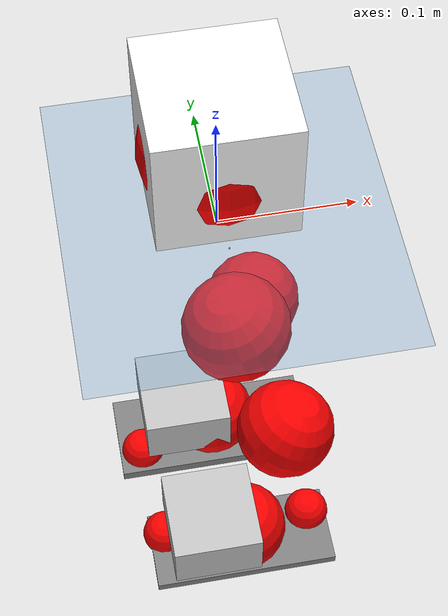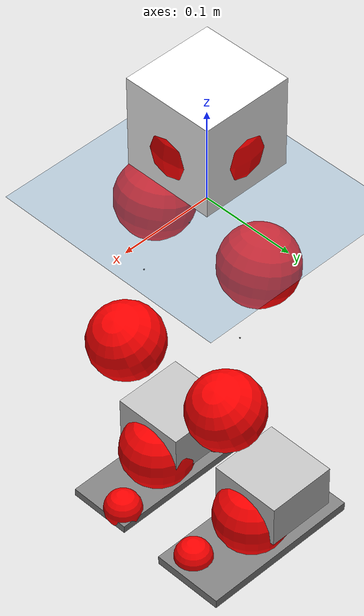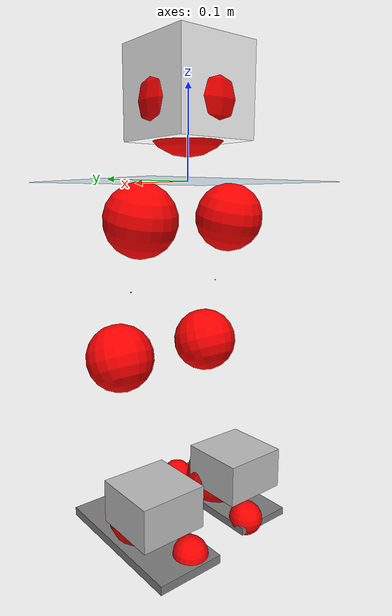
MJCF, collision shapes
<mujoco model="pi_12dof_release_v1">
  <compiler angle="radian" assetdir="assets" balanceinertia="true" inertiafromgeom="false"/>

  <option timestep="0.005" density="1.2" viscosity="2e-05"/>

  <size nkey="1"/>

  <visual>
    <quality shadowsize="8192"/>
    <map shadowclip="0.5"/>
  </visual>

  <default>
    <default class="/">
      <joint armature="0.01" damping="0.01" frictionloss="0.01"/>
      <geom contype="0" conaffinity="0" group="1" solref="-1000 -80"/>
      <site size="0.01 0.005 0.005" group="5"/>
      <general forcelimited="true" biastype="affine" gainprm="20" biasprm="0 -20 -0.5"/>
      <default class="foot">
        <geom size="0.0845 0.036 0.005" type="box" condim="6" group="4" priority="1" friction="0.9 0.2 0.2" solimp="0.015 1 0.005"/>
      </default>
      <default class="reward_collision_sphere">
        <geom group="5" rgba="1 0 0 1"/>
      </default>
    </default>
  </default>

  <asset>
    <texture type="skybox" colorspace="auto" name="//unnamed_texture_0" builtin="gradient" rgb1="0.95 0.95 0.95" rgb2="0.95 0.95 0.95" width="100" height="600"/>
    <texture type="2d" colorspace="auto" name="texplane" builtin="checker" rgb1="0.345 0.575 0.748" rgb2="0.345 0.575 0.748" markrgb="1 1 1" width="512" height="512"/>
    <material name="MatPlane" class="/" texture="texplane" texuniform="true" texrepeat="2 2" specular="0.9"/>
    <mesh name="baselink_1" class="/" file="baselink_1.STL"/>
    <mesh name="r_hip_pitch_link" class="/" file="r_hip_pitch_link.STL"/>
    <mesh name="r_hip_roll_link" class="/" file="r_hip_roll_link.STL"/>
    <mesh name="r_thigh_link" class="/" file="r_thigh_link.STL"/>
    <mesh name="r_calf_link" class="/" file="r_calf_link.STL"/>
    <mesh name="r_ankle_pitch_link" class="/" file="r_ankle_pitch_link.STL"/>
    <mesh name="r_ankle_roll_link" class="/" file="r_ankle_roll_link.STL"/>
    <mesh name="l_hip_pitch_link" class="/" file="l_hip_pitch_link.STL"/>
    <mesh name="l_hip_roll_link" class="/" file="l_hip_roll_link.STL"/>
    <mesh name="l_thigh_link" class="/" file="l_thigh_link.STL"/>
    <mesh name="l_calf_link" class="/" file="l_calf_link.STL"/>
    <mesh name="l_ankle_pitch_link" class="/" file="l_ankle_pitch_link.STL"/>
    <mesh name="l_ankle_roll_link" class="/" file="l_ankle_roll_link.STL"/>
  </asset>

  <worldbody>
    <geom name="floor" class="/" size="100 100 0.125" type="plane" group="0" material="MatPlane"/>
    <light name="toplight_shadow" class="/" pos="0 0 5" dir="0.0990148 0.0990148 -0.990148" type="directional" ambient="0.04 0.04 0.04" diffuse="0.55 0.55 0.55" specular="0.12 0.12 0.12"/>
    <light name="toplight_fill" class="/" pos="0 0 5" dir="0.0990148 0.0990148 -0.990148" type="directional" castshadow="false" ambient="0.04 0.04 0.04" diffuse="0.3 0.3 0.3" specular="0.08 0.08 0.08"/>
    <body name="trunk" pos="5.48701e-05 8.28106e-05 -0.00259432" quat="1 0.000144874 -9.47162e-05 6.61597e-05">
      <inertial pos="0.00166429 0.00246115 0.0492101" quat="0.695434 0.00994974 0.00962572 0.718457" mass="1.92822" diaginertia="0.00828468 0.00288644 0.00830771"/>
      <joint name="//unnamed_joint_0" type="free"/>
      <geom name="//unnamed_geom_1" class="/" type="mesh" density="0" rgba="1 1 1 1" mesh="baselink_1"/>
      <geom name="//unnamed_geom_2" class="/" size="0.0486236 0.0486236 0.0486236" pos="0 0 0.0922362" type="box" rgba="1 1 1 1"/>
      <geom name="//unnamed_geom_3" class="reward_collision_sphere" size="0.053486" pos="0 0 0.0807067"/>
      <site name="imu" class="/" pos="0.00101052 -0.00910369 0.00231379" size="0.00972473"/>
      <camera name="track" class="/" pos="0 -1.60061 0" quat="0.707107 0.707107 0 0" mode="trackcom"/>
      <camera name="ego_camera" class="/" pos="0.0723119 0 0.207531" quat="-0.5 -0.5 0.5 0.5"/>
      <body name="r_hip_pitch_link" pos="0.00208862 -0.0201409 -0.0384903" quat="0.992199 -1.23377e-05 -0.124667 -9.63094e-05">
        <inertial pos="-0.00183604 -0.0437749 -0.00141818" quat="-0.0176245 0.706297 -0.0232306 0.707315" mass="0.343883" diaginertia="9.05921e-05 3.16221e-05 0.000174001"/>
        <joint name="r_hip_pitch_joint" class="/" pos="0 0 0" axis="0.011215 -0.999937 -0.000363449" stiffness="0.0109083" range="-1.72911 1.19968" armature="0.00876592" damping="0.00377383" frictionloss="0.00840889"/>
        <geom name="//unnamed_geom_4" class="/" type="mesh" density="0" rgba="0.75294 0.75294 0.75294 1" mesh="r_hip_pitch_link"/>
        <geom name="//unnamed_geom_5" class="/" size="0.000486236 0.000486236 0.000486236" type="box" rgba="0.75294 0.75294 0.75294 1"/>
        <body name="r_hip_roll_link" pos="0.00064285 -0.0437211 0.00152787" quat="1 -4.16792e-05 7.06925e-05 2.18919e-05">
          <inertial pos="-0.00156431 0.000184289 -0.0726896" quat="0.705913 -0.0790577 -0.0833484 0.698921" mass="0.342175" diaginertia="0.000277669 9.12136e-05 0.000245186"/>
          <joint name="r_hip_roll_joint" class="/" pos="0 0 0" axis="-0.999917 0.000616658 0.0128894" range="-0.124197 0.511202" armature="0.0102432" damping="0.014479" frictionloss="0.0106669"/>
          <geom name="//unnamed_geom_6" class="/" type="mesh" density="0" rgba="0.75294 0.75294 0.75294 1" mesh="r_hip_roll_link"/>
          <geom name="//unnamed_geom_7" class="/" size="0.000486236 0.000486236 0.000486236" type="box" rgba="0.75294 0.75294 0.75294 1"/>
          <geom name="//unnamed_geom_8" class="reward_collision_sphere" size="0.0388989"/>
          <body name="r_thigh_link" pos="-0.00043737 0.00316507 -0.0772057" quat="0.999999 -0.000650958 0.000187801 -0.00116824">
            <inertial pos="-0.000244386 0.000716897 -0.0552771" quat="0.737071 0.675815 0.000198132 0.000263349" mass="0.0997031" diaginertia="0.000104051 3.05061e-05 0.000113548"/>
            <joint name="r_thigh_joint" class="/" pos="0 0 0" axis="0.000203521 0.000909739 -1" range="-0.305842 0.543885" armature="0.0110951" damping="0.00441999" frictionloss="0.00998837"/>
            <geom name="//unnamed_geom_9" class="/" type="mesh" density="0" rgba="0.75294 0.75294 0.75294 1" mesh="r_thigh_link"/>
            <geom name="//unnamed_geom_10" class="/" size="0.000486236 0.000486236 0.000486236" type="box" rgba="0.75294 0.75294 0.75294 1"/>
            <body name="r_calf_link" pos="0.00129389 -0.00325885 -0.082569" quat="0.947545 0.000672332 0.31962 0.00120363">
              <inertial pos="-0.000510941 -0.00167705 -0.0794428" quat="0.999985 -0.00361649 -0.000228248 0.00411788" mass="0.720951" diaginertia="0.00284573 0.00108924 0.000355116"/>
              <joint name="r_calf_joint" class="/" pos="0 0 0" axis="-0.0116457 -0.999907 0.00712861" stiffness="0.0115495" range="-1.67009 0.642004" armature="0.00953173" damping="0.00962997" frictionloss="0.00989683"/>
              <geom name="//unnamed_geom_11" class="/" type="mesh" density="0" rgba="0.75294 0.75294 0.75294 1" mesh="r_calf_link"/>
              <geom name="//unnamed_geom_12" class="/" size="0.000486236 0.000486236 0.000486236" type="box" rgba="0.75294 0.75294 0.75294 1"/>
              <geom name="//unnamed_geom_13" class="reward_collision_sphere" size="0.0388989"/>
              <body name="r_ankle_pitch_link" pos="0.00276204 0.00259648 -0.161024" quat="0.980068 3.37198e-06 -0.198664 -9.50501e-05">
                <inertial pos="0.00484255 0.00399358 -0.000251962" quat="0.0021433 0.707112 -0.00216835 0.707095" mass="0.163244" diaginertia="0.000254697 7.39357e-05 0.000247747"/>
                <joint name="r_ankle_pitch_joint" class="/" pos="0 0 0" axis="-0.00395037 -0.999991 0.0015096" range="-1.34419 0.522827" armature="0.00990524" damping="0.0234631" frictionloss="0.0110872"/>
                <geom name="//unnamed_geom_14" class="/" type="mesh" density="0" rgba="0.75294 0.75294 0.75294 1" mesh="r_ankle_pitch_link"/>
                <geom name="//unnamed_geom_15" class="/" size="0.0379264 0.0388989 0.0243118" type="box" rgba="0.75294 0.75294 0.75294 1"/>
                <body name="r_ankle_roll_link" pos="0.0756873 0.0024642 0.0019841" quat="1 0.000406698 -0.000278245 -0.000138385">
                  <inertial pos="-0.0237306 0.000884987 -0.0142884" quat="0.560708 0.429984 0.433161 0.559546" mass="0.464548" diaginertia="0.000966351 0.000336341 0.000573115"/>
                  <joint name="r_ankle_roll_joint" class="/" pos="0 0 0" axis="-0.999995 -0.00280266 -0.00136367" range="-0.168692 0.171878" armature="0.00966312" damping="0.00820811" frictionloss="0.0108246"/>
                  <geom name="//unnamed_geom_16" class="/" type="mesh" density="0" rgba="0.75294 0.75294 0.75294 1" mesh="r_ankle_roll_link"/>
                  <geom name="//unnamed_geom_17" class="/" type="mesh" rgba="0.75294 0.75294 0.75294 1" mesh="r_ankle_roll_link"/>
                  <geom name="right_foot" class="foot" size="0.0800668 0.0345398 0.00430643" pos="-0.0491721 0 -0.0507299"/>
                  <geom name="//unnamed_geom_19" class="reward_collision_sphere" size="0.0388989" pos="-0.048208 0 -0.023059"/>
                  <geom name="//unnamed_geom_20" class="reward_collision_sphere" size="0.0194495" pos="0.0144624 0.0160061 -0.0461181"/>
                  <geom name="//unnamed_geom_21" class="reward_collision_sphere" size="0.0194495" pos="-0.115699 0.0160061 -0.0461181"/>
                  <site name="right_foot" class="foot" pos="-0.0491721 0 -0.0507299" size="0.00972473"/>
                </body>
              </body>
            </body>
          </body>
        </body>
      </body>
      <body name="l_hip_pitch_link" pos="-0.000938729 0.0209038 -0.0377909" quat="0.992143 4.78367e-05 -0.12511 0.000174222">
        <inertial pos="-0.000506856 0.0402765 -0.00120667" quat="-0.0327721 0.700359 0.0289813 0.712449" mass="0.34973" diaginertia="0.000107287 3.55861e-05 0.000202749"/>
        <joint name="l_hip_pitch_joint" class="/" pos="0 0 0" axis="0.00358595 0.999993 0.000509945" range="-1.19293 1.69758" armature="0.010816" damping="0.0196026" frictionloss="0.0083631"/>
        <geom name="//unnamed_geom_22" class="/" type="mesh" density="0" rgba="0.75294 0.75294 0.75294 1" mesh="l_hip_pitch_link"/>
        <geom name="//unnamed_geom_23" class="/" size="0.000486236 0.000486236 0.000486236" type="box" rgba="0.75294 0.75294 0.75294 1"/>
        <body name="l_hip_roll_link" pos="-0.000705099 0.0422208 0.000422108" quat="1 -0.000360299 0.000197886 -0.000436988">
          <inertial pos="-0.000468055 -0.00261927 -0.0706163" quat="0.698814 -0.0756525 -0.0809185 0.706673" mass="0.356231" diaginertia="0.000290569 9.19568e-05 0.000275257"/>
          <joint name="l_hip_roll_joint" class="/" pos="0 0 0" axis="-0.999996 0.00134944 -0.0024504" range="-0.457331 0.0662134" armature="0.00947758" damping="0.00712374" frictionloss="0.00935655"/>
          <geom name="//unnamed_geom_24" class="/" type="mesh" density="0" rgba="0.75294 0.75294 0.75294 1" mesh="l_hip_roll_link"/>
          <geom name="//unnamed_geom_25" class="/" size="0.000486236 0.000486236 0.000486236" type="box" rgba="0.75294 0.75294 0.75294 1"/>
          <geom name="//unnamed_geom_26" class="reward_collision_sphere" size="0.0388989"/>
          <body name="l_thigh_link" pos="0.00228097 -0.00122028 -0.0795339" quat="0.999999 -0.000948493 -0.000255484 -0.00108007">
            <inertial pos="0.00303631 -0.00172171 -0.057301" quat="0.675425 0.737429 6.04096e-05 -0.000100892" mass="0.102469" diaginertia="0.000106764 3.29004e-05 0.000123764"/>
            <joint name="l_thigh_joint" class="/" pos="0 0 0" axis="-0.00327965 0.00229861 -0.999992" stiffness="0.00120337" range="-0.611852 0.243958" armature="0.00929527" damping="0.0202227" frictionloss="0.00845812"/>
            <geom name="//unnamed_geom_27" class="/" type="mesh" density="0" rgba="0.75294 0.75294 0.75294 1" mesh="l_thigh_link"/>
            <geom name="//unnamed_geom_28" class="/" size="0.000486236 0.000486236 0.000486236" type="box" rgba="0.75294 0.75294 0.75294 1"/>
            <body name="l_calf_link" pos="0.000385414 0.00303411 -0.0803668" quat="0.947602 0.00142909 0.31945 -0.000240269">
              <inertial pos="-0.000725518 0.00376608 -0.0822906" quat="0.999953 0.00845599 0.00060986 -0.00475476" mass="0.730389" diaginertia="0.00292576 0.00109438 0.000344956"/>
              <joint name="l_calf_joint" class="/" pos="0 0 0" axis="0.00233853 0.999979 -0.00600176" stiffness="0.00461688" range="-0.665511 1.62512" armature="0.00949771" damping="0.00447668" frictionloss="0.00860184"/>
              <geom name="//unnamed_geom_29" class="/" type="mesh" density="0" rgba="0.75294 0.75294 0.75294 1" mesh="l_calf_link"/>
              <geom name="//unnamed_geom_30" class="/" size="0.000486236 0.000486236 0.000486236" type="box" rgba="0.75294 0.75294 0.75294 1"/>
              <geom name="//unnamed_geom_31" class="reward_collision_sphere" size="0.0388989"/>
              <body name="l_ankle_pitch_link" pos="0.000372758 0.000336878 -0.163316" quat="0.979999 0.000361612 -0.199002 -9.77159e-05">
                <inertial pos="0.00455126 0.00132261 0.00174238" quat="-0.00118073 0.709832 -0.0110104 0.704284" mass="0.158179" diaginertia="0.000250073 7.04581e-05 0.00023983"/>
                <joint name="l_ankle_pitch_joint" class="/" pos="0 0 0" axis="-0.0134992 0.999907 -0.00211738" range="-0.517436 1.31385" armature="0.00998122" damping="0" frictionloss="0.0101105"/>
                <geom name="//unnamed_geom_32" class="/" type="mesh" density="0" rgba="0.75294 0.75294 0.75294 1" mesh="l_ankle_pitch_link"/>
                <geom name="//unnamed_geom_33" class="/" size="0.0379264 0.0388989 0.0243118" type="box" rgba="0.75294 0.75294 0.75294 1"/>
                <body name="l_ankle_roll_link" pos="0.0738184 -0.0019928 0.000160977" quat="0.999999 0.000713297 -0.000625508 0.00096932">
                  <inertial pos="-0.022974 -0.000488616 -0.0163965" quat="0.559103 0.426336 0.444904 0.554708" mass="0.452059" diaginertia="0.000913211 0.000332893 0.000580727"/>
                  <joint name="l_ankle_roll_joint" class="/" pos="0 0 0" axis="-0.999945 -0.00139122 -0.0103687" range="-0.146918 0.112603" armature="0.00948504" damping="0.00396283" frictionloss="0.0086777"/>
                  <geom name="//unnamed_geom_34" class="/" type="mesh" density="0" rgba="0.75294 0.75294 0.75294 1" mesh="l_ankle_roll_link"/>
                  <geom name="//unnamed_geom_35" class="/" type="mesh" rgba="0.75294 0.75294 0.75294 1" mesh="l_ankle_roll_link"/>
                  <geom name="left_foot" class="foot" size="0.0881047 0.0391144 0.00488402" pos="-0.0491721 0 -0.0507299"/>
                  <geom name="//unnamed_geom_37" class="reward_collision_sphere" size="0.0388989" pos="-0.048208 0 -0.023059"/>
                  <geom name="//unnamed_geom_38" class="reward_collision_sphere" size="0.0194495" pos="0.0144624 -0.0160061 -0.0461181"/>
                  <geom name="//unnamed_geom_39" class="reward_collision_sphere" size="0.0194495" pos="-0.115699 -0.0160061 -0.0461181"/>
                  <site name="left_foot" class="foot" pos="-0.0491721 0 -0.0507299" size="0.00972473"/>
                </body>
              </body>
            </body>
          </body>
        </body>
      </body>
    </body>
  </worldbody>

  <contact>
    <pair class="/" geom1="floor" geom2="right_foot" name="//unnamed_contact_1"/>
    <pair class="/" geom1="floor" geom2="left_foot" name="//unnamed_contact_0"/>
  </contact>

  <actuator>
    <general name="r_hip_pitch_joint" class="/" joint="r_hip_pitch_joint" forcerange="-18.4857 18.4857" gainprm="19.1659" biasprm="0 -19.1659 -0.482693"/>
    <general name="r_hip_roll_joint" class="/" joint="r_hip_roll_joint" forcerange="-20.3419 20.3419" gainprm="19.1659" biasprm="0 -19.1659 -0.482693"/>
    <general name="r_thigh_joint" class="/" joint="r_thigh_joint" forcerange="-18.8133 18.8133" gainprm="19.1659" biasprm="0 -19.1659 -0.482693"/>
    <general name="r_calf_joint" class="/" joint="r_calf_joint" forcerange="-20.4707 20.4707" gainprm="19.1659" biasprm="0 -19.1659 -0.482693"/>
    <general name="r_ankle_pitch_joint" class="/" joint="r_ankle_pitch_joint" forcerange="-22.1744 22.1744" gainprm="19.1659" biasprm="0 -19.1659 -0.482693"/>
    <general name="r_ankle_roll_joint" class="/" joint="r_ankle_roll_joint" forcerange="-22.5056 22.5056" gainprm="19.1659" biasprm="0 -19.1659 -0.482693"/>
    <general name="l_hip_pitch_joint" class="/" joint="l_hip_pitch_joint" forcerange="-19.0414 19.0414" gainprm="19.1659" biasprm="0 -19.1659 -0.482693"/>
    <general name="l_hip_roll_joint" class="/" joint="l_hip_roll_joint" forcerange="-18.7436 18.7436" gainprm="19.1659" biasprm="0 -19.1659 -0.482693"/>
    <general name="l_thigh_joint" class="/" joint="l_thigh_joint" forcerange="-19.9611 19.9611" gainprm="19.1659" biasprm="0 -19.1659 -0.482693"/>
    <general name="l_calf_joint" class="/" joint="l_calf_joint" forcerange="-20.5944 20.5944" gainprm="19.1659" biasprm="0 -19.1659 -0.482693"/>
    <general name="l_ankle_pitch_joint" class="/" joint="l_ankle_pitch_joint" forcerange="-20.5154 20.5154" gainprm="19.1659" biasprm="0 -19.1659 -0.482693"/>
    <general name="l_ankle_roll_joint" class="/" joint="l_ankle_roll_joint" forcerange="-19.4429 19.4429" gainprm="19.1659" biasprm="0 -19.1659 -0.482693"/>
  </actuator>

  <sensor>
    <gyro site="imu" name="imu_angular_velocity"/>
    <velocimeter site="imu" name="imu_linear_velocity"/>
    <framelinvel objtype="site" objname="left_foot" name="left_foot_global_linear_velocity"/>
    <framelinvel objtype="site" objname="right_foot" name="right_foot_global_linear_velocity"/>
  </sensor>

  <keyframe>
    <key name="home" qpos="0 0 0.291 1 0 0 0 0.4 0 0 -0.8 0.4 0 -0.4 0 0 0.8 -0.4 0"/>
  </keyframe>
</mujoco>
